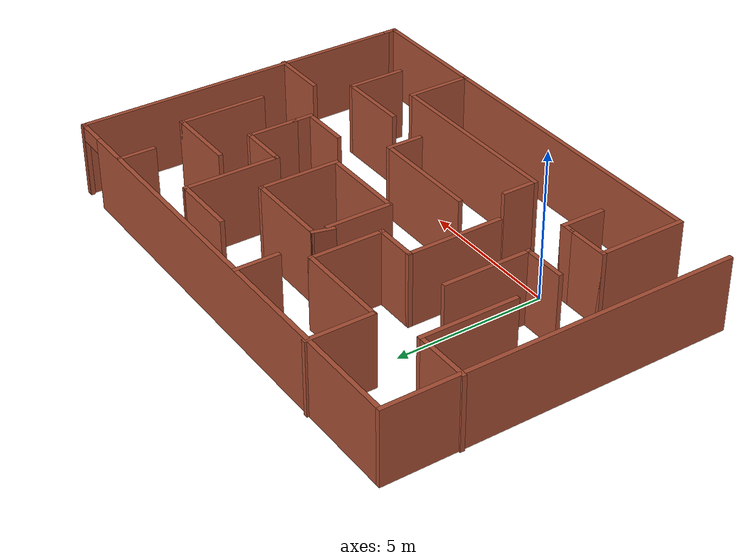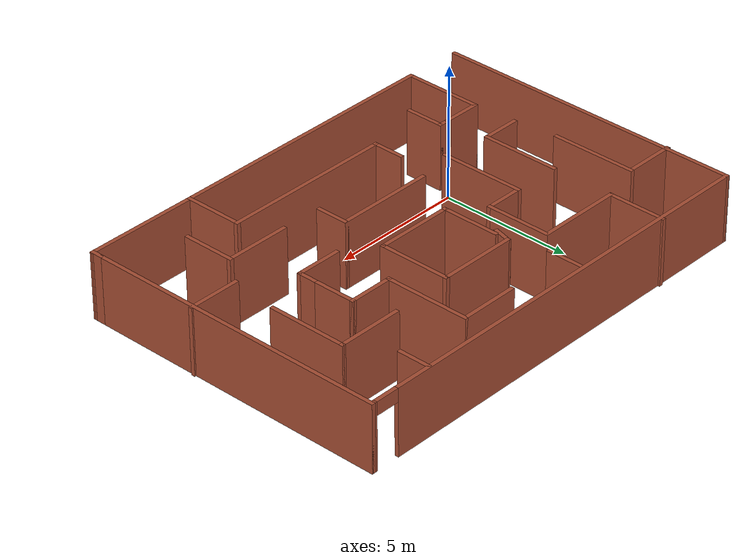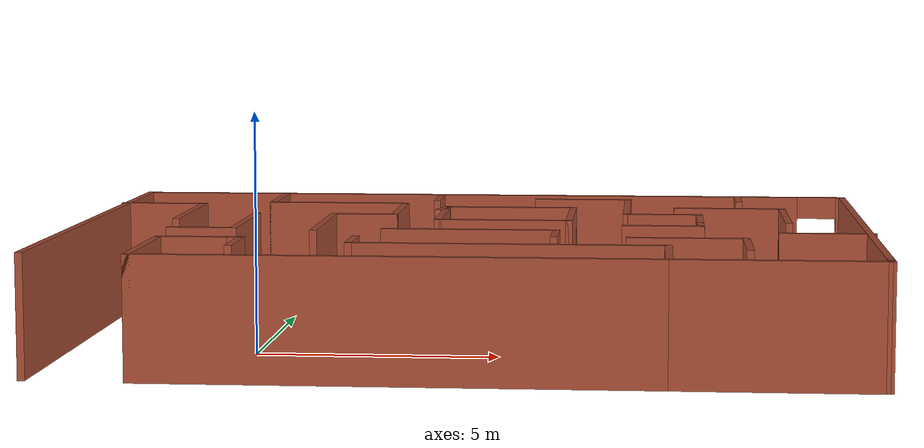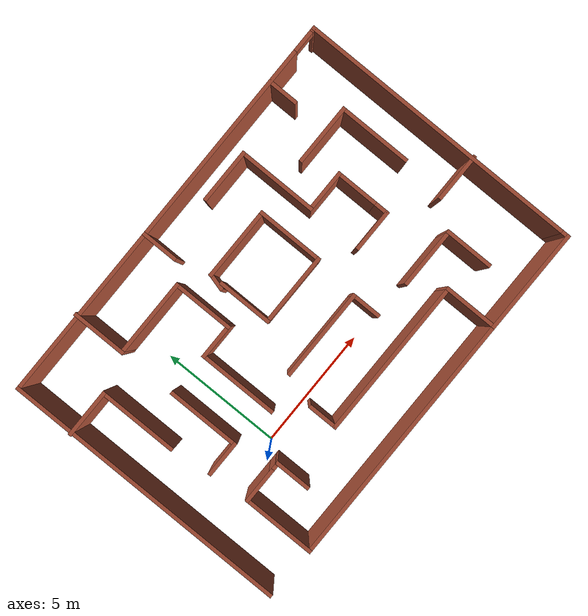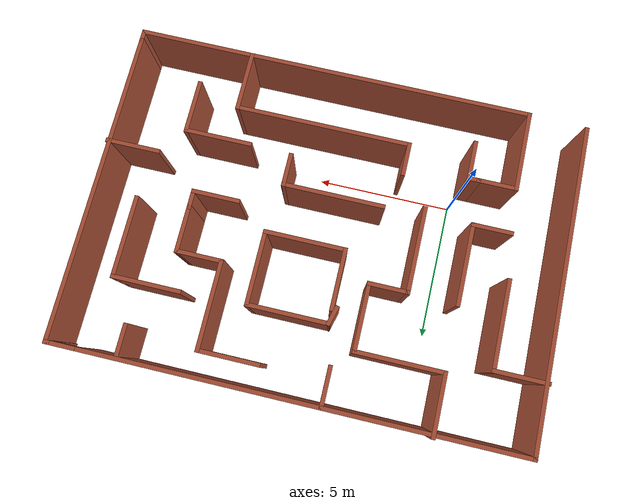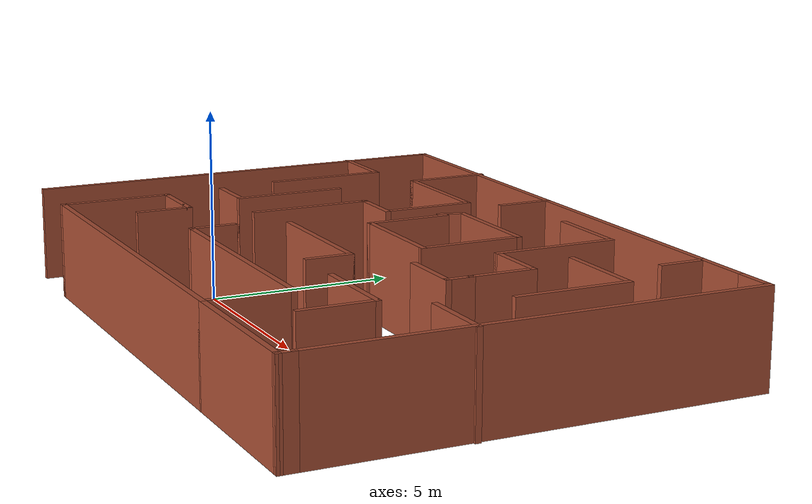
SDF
<?xml version='1.0'?>
<sdf version='1.7'>
  <model name='_small_maze'>
    <pose>4.27486 2.45617 0 0 -0 0</pose>
    <link name='Wall_0'>
      <collision name='Wall_0_Collision'>
        <geometry>
          <box>
            <size>1.5 0.15 2.5</size>
          </box>
        </geometry>
        <pose>0 0 1.25 0 -0 0</pose>
      </collision>
      <visual name='Wall_0_Visual'>
        <pose>0 0 1.25 0 -0 0</pose>
        <geometry>
          <box>
            <size>1.5 0.15 2.5</size>
          </box>
        </geometry>
        <material>
          <script>
            <uri>file://media/materials/scripts/gazebo.material</uri>
            <name>Gazebo/Bricks</name>
          </script>
          <ambient>1 1 1 1</ambient>
        </material>
        <meta>
          <layer>0</layer>
        </meta>
      </visual>
      <pose>-5.51986 -3.02617 0 0 -0 3.14159</pose>
    </link>
    <link name='Wall_10'>
      <collision name='Wall_10_Collision'>
        <geometry>
          <box>
            <size>11.5 0.15 2.5</size>
          </box>
        </geometry>
        <pose>0 0 1.25 0 -0 0</pose>
      </collision>
      <visual name='Wall_10_Visual'>
        <pose>0 0 1.25 0 -0 0</pose>
        <geometry>
          <box>
            <size>11.5 0.15 2.5</size>
          </box>
        </geometry>
        <material>
          <script>
            <uri>file://media/materials/scripts/gazebo.material</uri>
            <name>Gazebo/Bricks</name>
          </script>
          <ambient>1 1 1 1</ambient>
        </material>
        <meta>
          <layer>0</layer>
        </meta>
      </visual>
      <pose>8.30044 0.140261 0 0 -0 -1.5708</pose>
    </link>
    <link name='Wall_11'>
      <collision name='Wall_11_Collision'>
        <geometry>
          <box>
            <size>0.5 0.15 2.5</size>
          </box>
        </geometry>
        <pose>0 0 1.25 0 -0 0</pose>
      </collision>
      <visual name='Wall_11_Visual'>
        <pose>0 0 1.25 0 -0 0</pose>
        <geometry>
          <box>
            <size>0.5 0.15 2.5</size>
          </box>
        </geometry>
        <material>
          <script>
            <uri>file://media/materials/scripts/gazebo.material</uri>
            <name>Gazebo/Bricks</name>
          </script>
          <ambient>1 1 1 1</ambient>
        </material>
        <meta>
          <layer>0</layer>
        </meta>
      </visual>
      <pose>8.30044 -5.70974 0 0 -0 -1.5708</pose>
    </link>
    <link name='Wall_12'>
      <collision name='Wall_12_Collision'>
        <geometry>
          <box>
            <size>4.29531 0.15 2.5</size>
          </box>
        </geometry>
        <pose>0 0 1.25 0 -0 0</pose>
      </collision>
      <visual name='Wall_12_Visual'>
        <pose>0 0 1.25 0 -0 0</pose>
        <geometry>
          <box>
            <size>4.29531 0.15 2.5</size>
          </box>
        </geometry>
        <material>
          <script>
            <uri>file://media/materials/scripts/gazebo.material</uri>
            <name>Gazebo/Bricks</name>
          </script>
          <ambient>1 1 1 1</ambient>
        </material>
        <meta>
          <layer>0</layer>
        </meta>
      </visual>
      <pose>6.22779 -5.88045 0 0 -0 3.13953</pose>
    </link>
    <link name='Wall_14'>
      <collision name='Wall_14_Collision'>
        <geometry>
          <box>
            <size>2 0.15 2.5</size>
          </box>
        </geometry>
        <pose>0 0 1.25 0 -0 0</pose>
      </collision>
      <visual name='Wall_14_Visual'>
        <pose>0 0 1.25 0 -0 0</pose>
        <geometry>
          <box>
            <size>2 0.15 2.5</size>
          </box>
        </geometry>
        <material>
          <script>
            <uri>file://media/materials/scripts/gazebo.material</uri>
            <name>Gazebo/Bricks</name>
          </script>
          <ambient>1 1 1 1</ambient>
        </material>
        <meta>
          <layer>0</layer>
        </meta>
      </visual>
      <pose>-7.43307 3.35202 0 0 -0 3.14159</pose>
    </link>
    <link name='Wall_16'>
      <collision name='Wall_16_Collision'>
        <geometry>
          <box>
            <size>3.25 0.15 2.5</size>
          </box>
        </geometry>
        <pose>0 0 1.25 0 -0 0</pose>
      </collision>
      <visual name='Wall_16_Visual'>
        <pose>0 0 1.25 0 -0 0</pose>
        <geometry>
          <box>
            <size>3.25 0.15 2.5</size>
          </box>
        </geometry>
        <material>
          <script>
            <uri>file://media/materials/scripts/gazebo.material</uri>
            <name>Gazebo/Bricks</name>
          </script>
          <ambient>1 1 1 1</ambient>
        </material>
        <meta>
          <layer>0</layer>
        </meta>
      </visual>
      <pose>-6.50807 1.80202 0 0 -0 -1.5708</pose>
    </link>
    <link name='Wall_18'>
      <collision name='Wall_18_Collision'>
        <geometry>
          <box>
            <size>1.5 0.15 2.5</size>
          </box>
        </geometry>
        <pose>0 0 1.25 0 -0 0</pose>
      </collision>
      <visual name='Wall_18_Visual'>
        <pose>0 0 1.25 0 -0 0</pose>
        <geometry>
          <box>
            <size>1.5 0.15 2.5</size>
          </box>
        </geometry>
        <material>
          <script>
            <uri>file://media/materials/scripts/gazebo.material</uri>
            <name>Gazebo/Bricks</name>
          </script>
          <ambient>1 1 1 1</ambient>
        </material>
        <meta>
          <layer>0</layer>
        </meta>
      </visual>
      <pose>-5.622 -1.39711 0 0 -0 0</pose>
    </link>
    <link name='Wall_19'>
      <collision name='Wall_19_Collision'>
        <geometry>
          <box>
            <size>3 0.15 2.5</size>
          </box>
        </geometry>
        <pose>0 0 1.25 0 -0 0</pose>
      </collision>
      <visual name='Wall_19_Visual'>
        <pose>0 0 1.25 0 -0 0</pose>
        <geometry>
          <box>
            <size>3 0.15 2.5</size>
          </box>
        </geometry>
        <material>
          <script>
            <uri>file://media/materials/scripts/gazebo.material</uri>
            <name>Gazebo/Bricks</name>
          </script>
          <ambient>1 1 1 1</ambient>
        </material>
        <meta>
          <layer>0</layer>
        </meta>
      </visual>
      <pose>-4.947 0.02789 0 0 -0 1.5708</pose>
    </link>
    <link name='Wall_2'>
      <collision name='Wall_2_Collision'>
        <geometry>
          <box>
            <size>3 0.15 2.5</size>
          </box>
        </geometry>
        <pose>0 0 1.25 0 -0 0</pose>
      </collision>
      <visual name='Wall_2_Visual'>
        <pose>0 0 1.25 0 -0 0</pose>
        <geometry>
          <box>
            <size>3 0.15 2.5</size>
          </box>
        </geometry>
        <material>
          <script>
            <uri>file://media/materials/scripts/gazebo.material</uri>
            <name>Gazebo/Bricks</name>
          </script>
          <ambient>1 1 1 1</ambient>
        </material>
        <meta>
          <layer>0</layer>
        </meta>
      </visual>
      <pose>-6.19486 -4.45117 0 0 -0 -1.5708</pose>
    </link>
    <link name='Wall_21'>
      <collision name='Wall_21_Collision'>
        <geometry>
          <box>
            <size>2.25 0.15 2.5</size>
          </box>
        </geometry>
        <pose>0 0 1.25 0 -0 0</pose>
      </collision>
      <visual name='Wall_21_Visual'>
        <pose>0 0 1.25 0 -0 0</pose>
        <geometry>
          <box>
            <size>2.25 0.15 2.5</size>
          </box>
        </geometry>
        <material>
          <script>
            <uri>file://media/materials/scripts/gazebo.material</uri>
            <name>Gazebo/Bricks</name>
          </script>
          <ambient>1 1 1 1</ambient>
        </material>
        <meta>
          <layer>0</layer>
        </meta>
      </visual>
      <pose>-4.96021 4.83489 0 0 -0 -1.5708</pose>
    </link>
    <link name='Wall_22'>
      <collision name='Wall_22_Collision'>
        <geometry>
          <box>
            <size>3.25 0.15 2.5</size>
          </box>
        </geometry>
        <pose>0 0 1.25 0 -0 0</pose>
      </collision>
      <visual name='Wall_22_Visual'>
        <pose>0 0 1.25 0 -0 0</pose>
        <geometry>
          <box>
            <size>3.25 0.15 2.5</size>
          </box>
        </geometry>
        <material>
          <script>
            <uri>file://media/materials/scripts/gazebo.material</uri>
            <name>Gazebo/Bricks</name>
          </script>
          <ambient>1 1 1 1</ambient>
        </material>
        <meta>
          <layer>0</layer>
        </meta>
      </visual>
      <pose>-3.41021 3.78489 0 0 -0 0</pose>
    </link>
    <link name='Wall_23'>
      <collision name='Wall_23_Collision'>
        <geometry>
          <box>
            <size>2.5 0.15 2.5</size>
          </box>
        </geometry>
        <pose>0 0 1.25 0 -0 0</pose>
      </collision>
      <visual name='Wall_23_Visual'>
        <pose>0 0 1.25 0 -0 0</pose>
        <geometry>
          <box>
            <size>2.5 0.15 2.5</size>
          </box>
        </geometry>
        <material>
          <script>
            <uri>file://media/materials/scripts/gazebo.material</uri>
            <name>Gazebo/Bricks</name>
          </script>
          <ambient>1 1 1 1</ambient>
        </material>
        <meta>
          <layer>0</layer>
        </meta>
      </visual>
      <pose>-1.86021 2.60989 0 0 -0 -1.5708</pose>
    </link>
    <link name='Wall_24'>
      <collision name='Wall_24_Collision'>
        <geometry>
          <box>
            <size>1.5 0.15 2.5</size>
          </box>
        </geometry>
        <pose>0 0 1.25 0 -0 0</pose>
      </collision>
      <visual name='Wall_24_Visual'>
        <pose>0 0 1.25 0 -0 0</pose>
        <geometry>
          <box>
            <size>1.5 0.15 2.5</size>
          </box>
        </geometry>
        <material>
          <script>
            <uri>file://media/materials/scripts/gazebo.material</uri>
            <name>Gazebo/Bricks</name>
          </script>
          <ambient>1 1 1 1</ambient>
        </material>
        <meta>
          <layer>0</layer>
        </meta>
      </visual>
      <pose>-2.53521 1.43489 0 0 -0 3.14159</pose>
    </link>
    <link name='Wall_25'>
      <collision name='Wall_25_Collision'>
        <geometry>
          <box>
            <size>3.25 0.15 2.5</size>
          </box>
        </geometry>
        <pose>0 0 1.25 0 -0 0</pose>
      </collision>
      <visual name='Wall_25_Visual'>
        <pose>0 0 1.25 0 -0 0</pose>
        <geometry>
          <box>
            <size>3.25 0.15 2.5</size>
          </box>
        </geometry>
        <material>
          <script>
            <uri>file://media/materials/scripts/gazebo.material</uri>
            <name>Gazebo/Bricks</name>
          </script>
          <ambient>1 1 1 1</ambient>
        </material>
        <meta>
          <layer>0</layer>
        </meta>
      </visual>
      <pose>-3.21021 -0.115106 0 0 -0 -1.5708</pose>
    </link>
    <link name='Wall_27'>
      <collision name='Wall_27_Collision'>
        <geometry>
          <box>
            <size>3.75 0.15 2.5</size>
          </box>
        </geometry>
        <pose>0 0 1.25 0 -0 0</pose>
      </collision>
      <visual name='Wall_27_Visual'>
        <pose>0 0 1.25 0 -0 0</pose>
        <geometry>
          <box>
            <size>3.75 0.15 2.5</size>
          </box>
        </geometry>
        <material>
          <script>
            <uri>file://media/materials/scripts/gazebo.material</uri>
            <name>Gazebo/Bricks</name>
          </script>
          <ambient>1 1 1 1</ambient>
        </material>
        <meta>
          <layer>0</layer>
        </meta>
      </visual>
      <pose>0.041062 -1.32675 0 0 -0 0</pose>
    </link>
    <link name='Wall_28'>
      <collision name='Wall_28_Collision'>
        <geometry>
          <box>
            <size>1.25 0.15 2.5</size>
          </box>
        </geometry>
        <pose>0 0 1.25 0 -0 0</pose>
      </collision>
      <visual name='Wall_28_Visual'>
        <pose>0 0 1.25 0 -0 0</pose>
        <geometry>
          <box>
            <size>1.25 0.15 2.5</size>
          </box>
        </geometry>
        <material>
          <script>
            <uri>file://media/materials/scripts/gazebo.material</uri>
            <name>Gazebo/Bricks</name>
          </script>
          <ambient>1 1 1 1</ambient>
        </material>
        <meta>
          <layer>0</layer>
        </meta>
      </visual>
      <pose>1.84106 -1.87675 0 0 -0 -1.5708</pose>
    </link>
    <link name='Wall_3'>
      <collision name='Wall_3_Collision'>
        <geometry>
          <box>
            <size>10.5 0.15 2.5</size>
          </box>
        </geometry>
        <pose>0 0 1.25 0 -0 0</pose>
      </collision>
      <visual name='Wall_3_Visual'>
        <pose>0 0 1.25 0 -0 0</pose>
        <geometry>
          <box>
            <size>10.5 0.15 2.5</size>
          </box>
        </geometry>
        <material>
          <script>
            <uri>file://media/materials/scripts/gazebo.material</uri>
            <name>Gazebo/Bricks</name>
          </script>
          <ambient>1 1 1 1</ambient>
        </material>
        <meta>
          <layer>0</layer>
        </meta>
      </visual>
      <pose>-1.01986 -5.87617 0 0 -0 0</pose>
    </link>
    <link name='Wall_30'>
      <collision name='Wall_30_Collision'>
        <geometry>
          <box>
            <size>2 0.15 2.5</size>
          </box>
        </geometry>
        <pose>0 0 1.25 0 -0 0</pose>
      </collision>
      <visual name='Wall_30_Visual'>
        <pose>0 0 1.25 0 -0 0</pose>
        <geometry>
          <box>
            <size>2 0.15 2.5</size>
          </box>
        </geometry>
        <material>
          <script>
            <uri>file://media/materials/scripts/gazebo.material</uri>
            <name>Gazebo/Bricks</name>
          </script>
          <ambient>1 1 1 1</ambient>
        </material>
        <meta>
          <layer>0</layer>
        </meta>
      </visual>
      <pose>5.73414 -3.42713 0 0 -0 1.5708</pose>
    </link>
    <link name='Wall_31'>
      <collision name='Wall_31_Collision'>
        <geometry>
          <box>
            <size>2.5 0.15 2.5</size>
          </box>
        </geometry>
        <pose>0 0 1.25 0 -0 0</pose>
      </collision>
      <visual name='Wall_31_Visual'>
        <pose>0 0 1.25 0 -0 0</pose>
        <geometry>
          <box>
            <size>2.5 0.15 2.5</size>
          </box>
        </geometry>
        <material>
          <script>
            <uri>file://media/materials/scripts/gazebo.material</uri>
            <name>Gazebo/Bricks</name>
          </script>
          <ambient>1 1 1 1</ambient>
        </material>
        <meta>
          <layer>0</layer>
        </meta>
      </visual>
      <pose>4.55914 -2.50213 0 0 -0 3.14159</pose>
    </link>
    <link name='Wall_33'>
      <collision name='Wall_33_Collision'>
        <geometry>
          <box>
            <size>2.25 0.15 2.5</size>
          </box>
        </geometry>
        <pose>0 0 1.25 0 -0 0</pose>
      </collision>
      <visual name='Wall_33_Visual'>
        <pose>0 0 1.25 0 -0 0</pose>
        <geometry>
          <box>
            <size>2.25 0.15 2.5</size>
          </box>
        </geometry>
        <material>
          <script>
            <uri>file://media/materials/scripts/gazebo.material</uri>
            <name>Gazebo/Bricks</name>
          </script>
          <ambient>1 1 1 1</ambient>
        </material>
        <meta>
          <layer>0</layer>
        </meta>
      </visual>
      <pose>-0.809112 1.52809 0 0 -0 -1.5708</pose>
    </link>
    <link name='Wall_34'>
      <collision name='Wall_34_Collision'>
        <geometry>
          <box>
            <size>3 0.15 2.5</size>
          </box>
        </geometry>
        <pose>0 0 1.25 0 -0 0</pose>
      </collision>
      <visual name='Wall_34_Visual'>
        <pose>0 0 1.25 0 -0 0</pose>
        <geometry>
          <box>
            <size>3 0.15 2.5</size>
          </box>
        </geometry>
        <material>
          <script>
            <uri>file://media/materials/scripts/gazebo.material</uri>
            <name>Gazebo/Bricks</name>
          </script>
          <ambient>1 1 1 1</ambient>
        </material>
        <meta>
          <layer>0</layer>
        </meta>
      </visual>
      <pose>0.615888 0.47809 0 0 -0 0</pose>
    </link>
    <link name='Wall_35'>
      <collision name='Wall_35_Collision'>
        <geometry>
          <box>
            <size>2.75 0.15 2.5</size>
          </box>
        </geometry>
        <pose>0 0 1.25 0 -0 0</pose>
      </collision>
      <visual name='Wall_35_Visual'>
        <pose>0 0 1.25 0 -0 0</pose>
        <geometry>
          <box>
            <size>2.75 0.15 2.5</size>
          </box>
        </geometry>
        <material>
          <script>
            <uri>file://media/materials/scripts/gazebo.material</uri>
            <name>Gazebo/Bricks</name>
          </script>
          <ambient>1 1 1 1</ambient>
        </material>
        <meta>
          <layer>0</layer>
        </meta>
      </visual>
      <pose>2.04089 1.77809 0 0 -0 1.5708</pose>
    </link>
    <link name='Wall_36'>
      <collision name='Wall_36_Collision'>
        <geometry>
          <box>
            <size>3 0.15 2.5</size>
          </box>
        </geometry>
        <pose>0 0 1.25 0 -0 0</pose>
      </collision>
      <visual name='Wall_36_Visual'>
        <pose>0 0 1.25 0 -0 0</pose>
        <geometry>
          <box>
            <size>3 0.15 2.5</size>
          </box>
        </geometry>
        <material>
          <script>
            <uri>file://media/materials/scripts/gazebo.material</uri>
            <name>Gazebo/Bricks</name>
          </script>
          <ambient>1 1 1 1</ambient>
        </material>
        <meta>
          <layer>0</layer>
        </meta>
      </visual>
      <pose>0.615888 3.07809 0 0 -0 3.14159</pose>
    </link>
    <link name='Wall_37'>
      <collision name='Wall_37_Collision'>
        <geometry>
          <box>
            <size>0.75 0.15 2.5</size>
          </box>
        </geometry>
        <pose>0 0 1.25 0 -0 0</pose>
      </collision>
      <visual name='Wall_37_Visual'>
        <pose>0 0 1.25 0 -0 0</pose>
        <geometry>
          <box>
            <size>0.75 0.15 2.5</size>
          </box>
        </geometry>
        <material>
          <script>
            <uri>file://media/materials/scripts/gazebo.material</uri>
            <name>Gazebo/Bricks</name>
          </script>
          <ambient>1 1 1 1</ambient>
        </material>
        <meta>
          <layer>0</layer>
        </meta>
      </visual>
      <pose>-0.886757 2.78831 0 0 -0 -1.8326</pose>
    </link>
    <link name='Wall_39'>
      <collision name='Wall_39_Collision'>
        <geometry>
          <box>
            <size>2.25 0.15 2.5</size>
          </box>
        </geometry>
        <pose>0 0 1.25 0 -0 0</pose>
      </collision>
      <visual name='Wall_39_Visual'>
        <pose>0 0 1.25 0 -0 0</pose>
        <geometry>
          <box>
            <size>2.25 0.15 2.5</size>
          </box>
        </geometry>
        <material>
          <script>
            <uri>file://media/materials/scripts/gazebo.material</uri>
            <name>Gazebo/Bricks</name>
          </script>
          <ambient>1 1 1 1</ambient>
        </material>
        <meta>
          <layer>0</layer>
        </meta>
      </visual>
      <pose>2.2109 4.93507 0 0 -0 0</pose>
    </link>
    <link name='Wall_4'>
      <collision name='Wall_4_Collision'>
        <geometry>
          <box>
            <size>2.25 0.15 2.5</size>
          </box>
        </geometry>
        <pose>0 0 1.25 0 -0 0</pose>
      </collision>
      <visual name='Wall_4_Visual'>
        <pose>0 0 1.25 0 -0 0</pose>
        <geometry>
          <box>
            <size>2.25 0.15 2.5</size>
          </box>
        </geometry>
        <material>
          <script>
            <uri>file://media/materials/scripts/gazebo.material</uri>
            <name>Gazebo/Bricks</name>
          </script>
          <ambient>1 1 1 1</ambient>
        </material>
        <meta>
          <layer>0</layer>
        </meta>
      </visual>
      <pose>4.15514 -4.82617 0 0 -0 1.5708</pose>
    </link>
    <link name='Wall_40'>
      <collision name='Wall_40_Collision'>
        <geometry>
          <box>
            <size>3.25 0.15 2.5</size>
          </box>
        </geometry>
        <pose>0 0 1.25 0 -0 0</pose>
      </collision>
      <visual name='Wall_40_Visual'>
        <pose>0 0 1.25 0 -0 0</pose>
        <geometry>
          <box>
            <size>3.25 0.15 2.5</size>
          </box>
        </geometry>
        <material>
          <script>
            <uri>file://media/materials/scripts/gazebo.material</uri>
            <name>Gazebo/Bricks</name>
          </script>
          <ambient>1 1 1 1</ambient>
        </material>
        <meta>
          <layer>0</layer>
        </meta>
      </visual>
      <pose>3.2609 3.38507 0 0 -0 -1.5708</pose>
    </link>
    <link name='Wall_41'>
      <collision name='Wall_41_Collision'>
        <geometry>
          <box>
            <size>1.75 0.15 2.5</size>
          </box>
        </geometry>
        <pose>0 0 1.25 0 -0 0</pose>
      </collision>
      <visual name='Wall_41_Visual'>
        <pose>0 0 1.25 0 -0 0</pose>
        <geometry>
          <box>
            <size>1.75 0.15 2.5</size>
          </box>
        </geometry>
        <material>
          <script>
            <uri>file://media/materials/scripts/gazebo.material</uri>
            <name>Gazebo/Bricks</name>
          </script>
          <ambient>1 1 1 1</ambient>
        </material>
        <meta>
          <layer>0</layer>
        </meta>
      </visual>
      <pose>4.0609 1.83507 0 0 -0 0</pose>
    </link>
    <link name='Wall_42'>
      <collision name='Wall_42_Collision'>
        <geometry>
          <box>
            <size>1.75 0.15 2.5</size>
          </box>
        </geometry>
        <pose>0 0 1.25 0 -0 0</pose>
      </collision>
      <visual name='Wall_42_Visual'>
        <pose>0 0 1.25 0 -0 0</pose>
        <geometry>
          <box>
            <size>1.75 0.15 2.5</size>
          </box>
        </geometry>
        <material>
          <script>
            <uri>file://media/materials/scripts/gazebo.material</uri>
            <name>Gazebo/Bricks</name>
          </script>
          <ambient>1 1 1 1</ambient>
        </material>
        <meta>
          <layer>0</layer>
        </meta>
      </visual>
      <pose>4.8609 1.03507 0 0 -0 -1.5708</pose>
    </link>
    <link name='Wall_43'>
      <collision name='Wall_43_Collision'>
        <geometry>
          <box>
            <size>0.75 0.15 2.5</size>
          </box>
        </geometry>
        <pose>0 0 1.25 0 -0 0</pose>
      </collision>
      <visual name='Wall_43_Visual'>
        <pose>0 0 1.25 0 -0 0</pose>
        <geometry>
          <box>
            <size>0.75 0.15 2.5</size>
          </box>
        </geometry>
        <material>
          <script>
            <uri>file://media/materials/scripts/gazebo.material</uri>
            <name>Gazebo/Bricks</name>
          </script>
          <ambient>1 1 1 1</ambient>
        </material>
        <meta>
          <layer>0</layer>
        </meta>
      </visual>
      <pose>4.8609 -0.064933 0 0 -0 -1.5708</pose>
    </link>
    <link name='Wall_44'>
      <collision name='Wall_44_Collision'>
        <geometry>
          <box>
            <size>1.75 0.15 2.5</size>
          </box>
        </geometry>
        <pose>0 0 1.25 0 -0 0</pose>
      </collision>
      <visual name='Wall_44_Visual'>
        <pose>0 0 1.25 0 -0 0</pose>
        <geometry>
          <box>
            <size>1.75 0.15 2.5</size>
          </box>
        </geometry>
        <material>
          <script>
            <uri>file://media/materials/scripts/gazebo.material</uri>
            <name>Gazebo/Bricks</name>
          </script>
          <ambient>1 1 1 1</ambient>
        </material>
        <meta>
          <layer>0</layer>
        </meta>
      </visual>
      <pose>4.0609 -0.364933 0 0 -0 3.14159</pose>
    </link>
    <link name='Wall_46'>
      <collision name='Wall_46_Collision'>
        <geometry>
          <box>
            <size>2.5 0.15 2.5</size>
          </box>
        </geometry>
        <pose>0 0 1.25 0 -0 0</pose>
      </collision>
      <visual name='Wall_46_Visual'>
        <pose>0 0 1.25 0 -0 0</pose>
        <geometry>
          <box>
            <size>2.5 0.15 2.5</size>
          </box>
        </geometry>
        <material>
          <script>
            <uri>file://media/materials/scripts/gazebo.material</uri>
            <name>Gazebo/Bricks</name>
          </script>
          <ambient>1 1 1 1</ambient>
        </material>
        <meta>
          <layer>0</layer>
        </meta>
      </visual>
      <pose>5.57235 3.17613 0 0 -0 0</pose>
    </link>
    <link name='Wall_47'>
      <collision name='Wall_47_Collision'>
        <geometry>
          <box>
            <size>3 0.15 2.5</size>
          </box>
        </geometry>
        <pose>0 0 1.25 0 -0 0</pose>
      </collision>
      <visual name='Wall_47_Visual'>
        <pose>0 0 1.25 0 -0 0</pose>
        <geometry>
          <box>
            <size>3 0.15 2.5</size>
          </box>
        </geometry>
        <material>
          <script>
            <uri>file://media/materials/scripts/gazebo.material</uri>
            <name>Gazebo/Bricks</name>
          </script>
          <ambient>1 1 1 1</ambient>
        </material>
        <meta>
          <layer>0</layer>
        </meta>
      </visual>
      <pose>6.74735 1.75113 0 0 -0 -1.5708</pose>
    </link>
    <link name='Wall_49'>
      <collision name='Wall_49_Collision'>
        <geometry>
          <box>
            <size>1.25 0.15 2.5</size>
          </box>
        </geometry>
        <pose>0 0 1.25 0 -0 0</pose>
      </collision>
      <visual name='Wall_49_Visual'>
        <pose>0 0 1.25 0 -0 0</pose>
        <geometry>
          <box>
            <size>1.25 0.15 2.5</size>
          </box>
        </geometry>
        <material>
          <script>
            <uri>file://media/materials/scripts/gazebo.material</uri>
            <name>Gazebo/Bricks</name>
          </script>
          <ambient>1 1 1 1</ambient>
        </material>
        <meta>
          <layer>0</layer>
        </meta>
      </visual>
      <pose>5.83967 5.22936 0 0 -0 -1.5708</pose>
    </link>
    <link name='Wall_5'>
      <collision name='Wall_5_Collision'>
        <geometry>
          <box>
            <size>6.5 0.15 2.5</size>
          </box>
        </geometry>
        <pose>0 0 1.25 0 -0 0</pose>
      </collision>
      <visual name='Wall_5_Visual'>
        <pose>0 0 1.25 0 -0 0</pose>
        <geometry>
          <box>
            <size>6.5 0.15 2.5</size>
          </box>
        </geometry>
        <material>
          <script>
            <uri>file://media/materials/scripts/gazebo.material</uri>
            <name>Gazebo/Bricks</name>
          </script>
          <ambient>1 1 1 1</ambient>
        </material>
        <meta>
          <layer>0</layer>
        </meta>
      </visual>
      <pose>0.980142 -3.77617 0 0 -0 3.14159</pose>
    </link>
    <link name='Wall_51'>
      <collision name='Wall_51_Collision'>
        <geometry>
          <box>
            <size>1.5 0.15 2.5</size>
          </box>
        </geometry>
        <pose>0 0 1.25 0 -0 0</pose>
      </collision>
      <visual name='Wall_51_Visual'>
        <pose>0 0 1.25 0 -0 0</pose>
        <geometry>
          <box>
            <size>1.5 0.15 2.5</size>
          </box>
        </geometry>
        <material>
          <script>
            <uri>file://media/materials/scripts/gazebo.material</uri>
            <name>Gazebo/Bricks</name>
          </script>
          <ambient>1 1 1 1</ambient>
        </material>
        <meta>
          <layer>0</layer>
        </meta>
      </visual>
      <pose>-1.19608 5.13954 0 0 -0 -1.5708</pose>
    </link>
    <link name='Wall_53'>
      <collision name='Wall_53_Collision'>
        <geometry>
          <box>
            <size>2 0.15 2.5</size>
          </box>
        </geometry>
        <pose>0 0 1.25 0 -0 0</pose>
      </collision>
      <visual name='Wall_53_Visual'>
        <pose>0 0 1.25 0 -0 0</pose>
        <geometry>
          <box>
            <size>2 0.15 2.5</size>
          </box>
        </geometry>
        <material>
          <script>
            <uri>file://media/materials/scripts/gazebo.material</uri>
            <name>Gazebo/Bricks</name>
          </script>
          <ambient>1 1 1 1</ambient>
        </material>
        <meta>
          <layer>0</layer>
        </meta>
      </visual>
      <pose>7.43307 -1.50265 0 0 -0 0</pose>
    </link>
    <link name='Wall_55'>
      <collision name='Wall_55_Collision'>
        <geometry>
          <box>
            <size>0.5 0.15 2.5</size>
          </box>
        </geometry>
        <pose>0 0 1.25 0 -0 0</pose>
      </collision>
      <visual name='Wall_55_Visual'>
        <pose>0 0 1.25 0 -0 0</pose>
        <geometry>
          <box>
            <size>0.5 0.15 2.5</size>
          </box>
        </geometry>
        <material>
          <script>
            <uri>file://media/materials/scripts/gazebo.material</uri>
            <name>Gazebo/Bricks</name>
          </script>
          <ambient>1 1 1 1</ambient>
        </material>
        <meta>
          <layer>0</layer>
        </meta>
      </visual>
      <pose>-4.66986 -3.02617 0 0 -0 0</pose>
    </link>
    <link name='Wall_56'>
      <collision name='Wall_56_Collision'>
        <geometry>
          <box>
            <size>1.5 0.15 2.5</size>
          </box>
        </geometry>
        <pose>0 0 1.25 0 -0 0</pose>
      </collision>
      <visual name='Wall_56_Visual'>
        <pose>0 0 1.25 0 -0 0</pose>
        <geometry>
          <box>
            <size>1.5 0.15 2.5</size>
          </box>
        </geometry>
        <material>
          <script>
            <uri>file://media/materials/scripts/gazebo.material</uri>
            <name>Gazebo/Bricks</name>
          </script>
          <ambient>1 1 1 1</ambient>
        </material>
        <meta>
          <layer>0</layer>
        </meta>
      </visual>
      <pose>-4.49486 -3.70117 0 0 -0 -1.5708</pose>
    </link>
    <link name='Wall_6'>
      <collision name='Wall_6_Collision'>
        <geometry>
          <box>
            <size>1.25 0.15 2.5</size>
          </box>
        </geometry>
        <pose>0 0 1.25 0 -0 0</pose>
      </collision>
      <visual name='Wall_6_Visual'>
        <pose>0 0 1.25 0 -0 0</pose>
        <geometry>
          <box>
            <size>1.25 0.15 2.5</size>
          </box>
        </geometry>
        <material>
          <script>
            <uri>file://media/materials/scripts/gazebo.material</uri>
            <name>Gazebo/Bricks</name>
          </script>
          <ambient>1 1 1 1</ambient>
        </material>
        <meta>
          <layer>0</layer>
        </meta>
      </visual>
      <pose>-2.19486 -3.22617 0 0 -0 1.5708</pose>
    </link>
    <link name='Wall_8'>
      <collision name='Wall_8_Collision'>
        <geometry>
          <box>
            <size>11.75 0.15 2.5</size>
          </box>
        </geometry>
        <pose>0 0 1.25 0 -0 0</pose>
      </collision>
      <visual name='Wall_8_Visual'>
        <pose>0 0 1.25 0 -0 0</pose>
        <geometry>
          <box>
            <size>11.75 0.15 2.5</size>
          </box>
        </geometry>
        <material>
          <script>
            <uri>file://media/materials/scripts/gazebo.material</uri>
            <name>Gazebo/Bricks</name>
          </script>
          <ambient>1 1 1 1</ambient>
        </material>
        <meta>
          <layer>0</layer>
        </meta>
      </visual>
      <pose>-8.29956 0.015261 0 0 -0 1.5708</pose>
    </link>
    <link name='Wall_9'>
      <pose>0.000442 5.81526 0 0 -0 0</pose>
      <visual name='Wall_9_Visual_0'>
        <pose>-0.560646 0 1.25 0 -0 0</pose>
        <geometry>
          <box>
            <size>15.6287 0.15 2.5</size>
          </box>
        </geometry>
        <material>
          <script>
            <uri>file://media/materials/scripts/gazebo.material</uri>
            <name>Gazebo/Bricks</name>
          </script>
          <ambient>1 1 1 1</ambient>
        </material>
        <meta>
          <layer>0</layer>
        </meta>
      </visual>
      <collision name='Wall_9_Collision_0'>
        <geometry>
          <box>
            <size>15.6287 0.15 2.5</size>
          </box>
        </geometry>
        <pose>-0.560646 0 1.25 0 -0 0</pose>
      </collision>
      <visual name='Wall_9_Visual_1'>
        <pose>8.26435 0 1.25 0 -0 0</pose>
        <geometry>
          <box>
            <size>0.221293 0.15 2.5</size>
          </box>
        </geometry>
        <material>
          <script>
            <uri>file://media/materials/scripts/gazebo.material</uri>
            <name>Gazebo/Bricks</name>
          </script>
          <ambient>1 1 1 1</ambient>
        </material>
        <meta>
          <layer>0</layer>
        </meta>
      </visual>
      <collision name='Wall_9_Collision_1'>
        <geometry>
          <box>
            <size>0.221293 0.15 2.5</size>
          </box>
        </geometry>
        <pose>8.26435 0 1.25 0 -0 0</pose>
      </collision>
      <visual name='Wall_9_Visual_2'>
        <pose>7.70371 0 2.25 0 -0 0</pose>
        <geometry>
          <box>
            <size>0.9 0.15 0.5</size>
          </box>
        </geometry>
        <material>
          <script>
            <uri>file://media/materials/scripts/gazebo.material</uri>
            <name>Gazebo/Bricks</name>
          </script>
          <ambient>1 1 1 1</ambient>
        </material>
        <meta>
          <layer>0</layer>
        </meta>
      </visual>
      <collision name='Wall_9_Collision_2'>
        <geometry>
          <box>
            <size>0.9 0.15 0.5</size>
          </box>
        </geometry>
        <pose>7.70371 0 2.25 0 -0 0</pose>
      </collision>
    </link>
    <static>1</static>
  </model>
</sdf>
